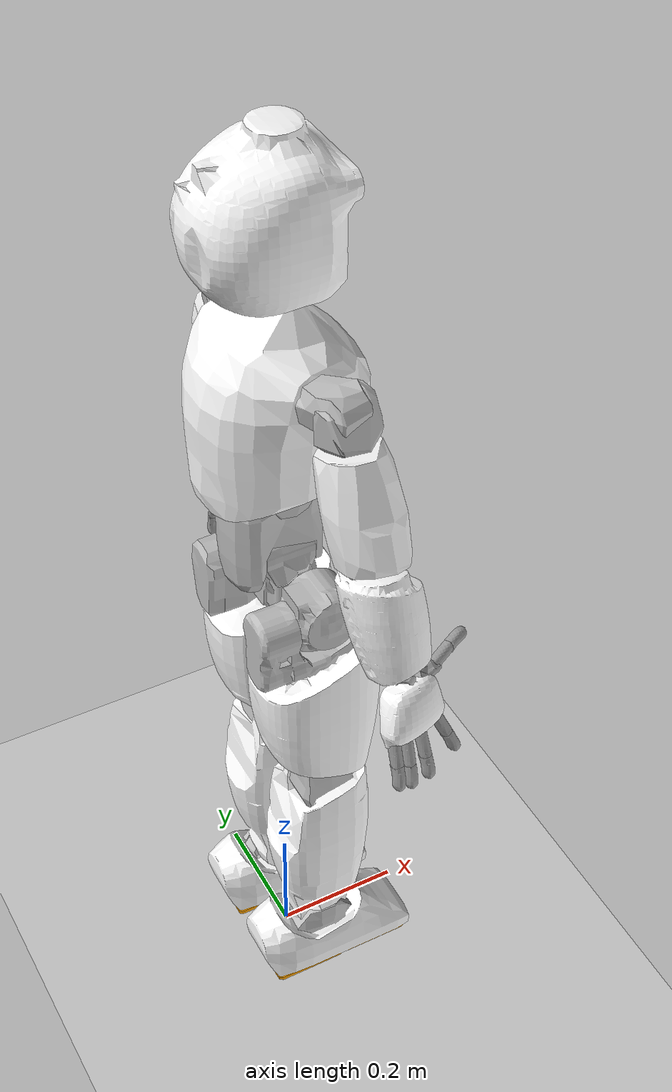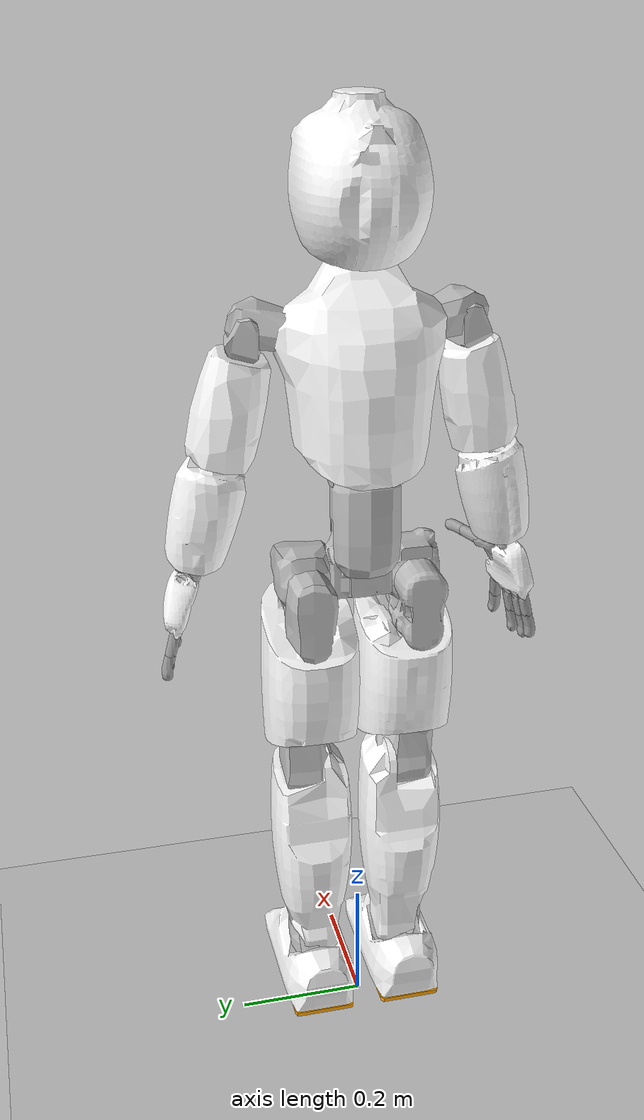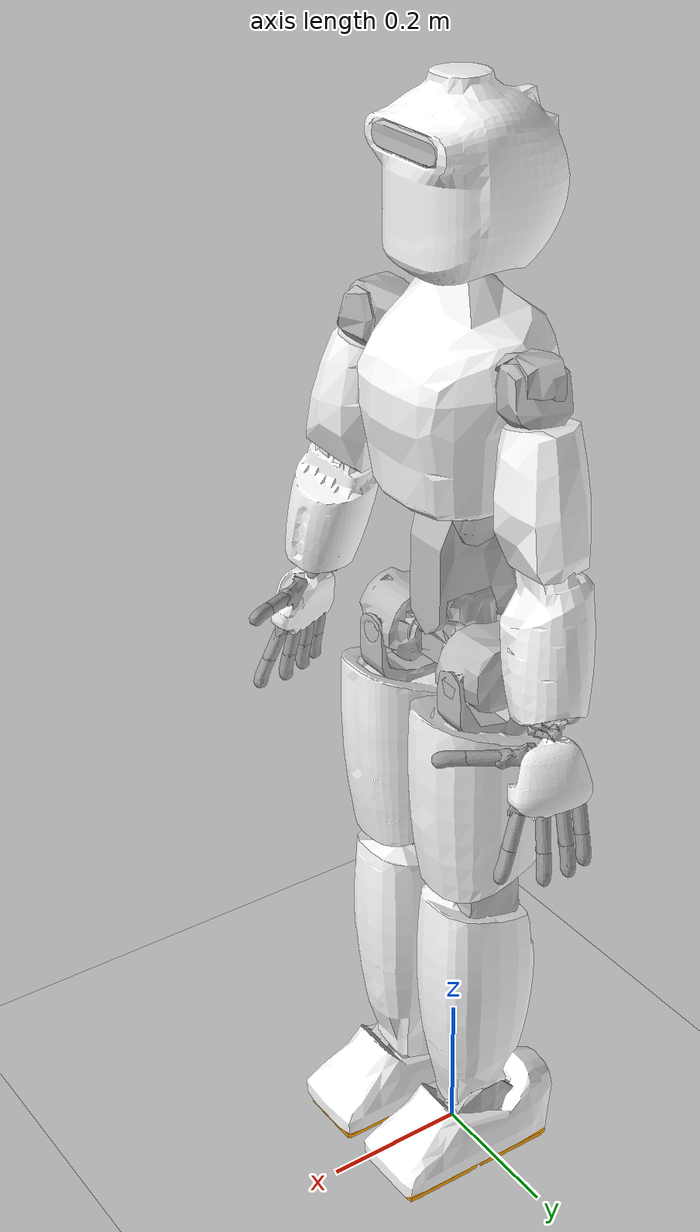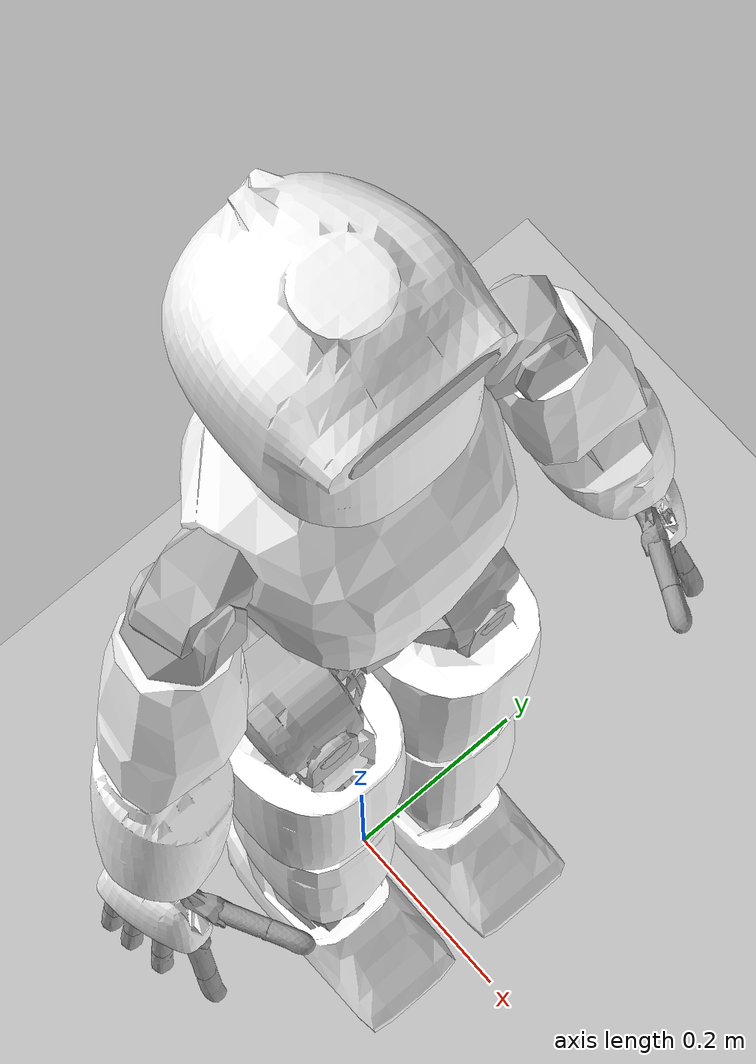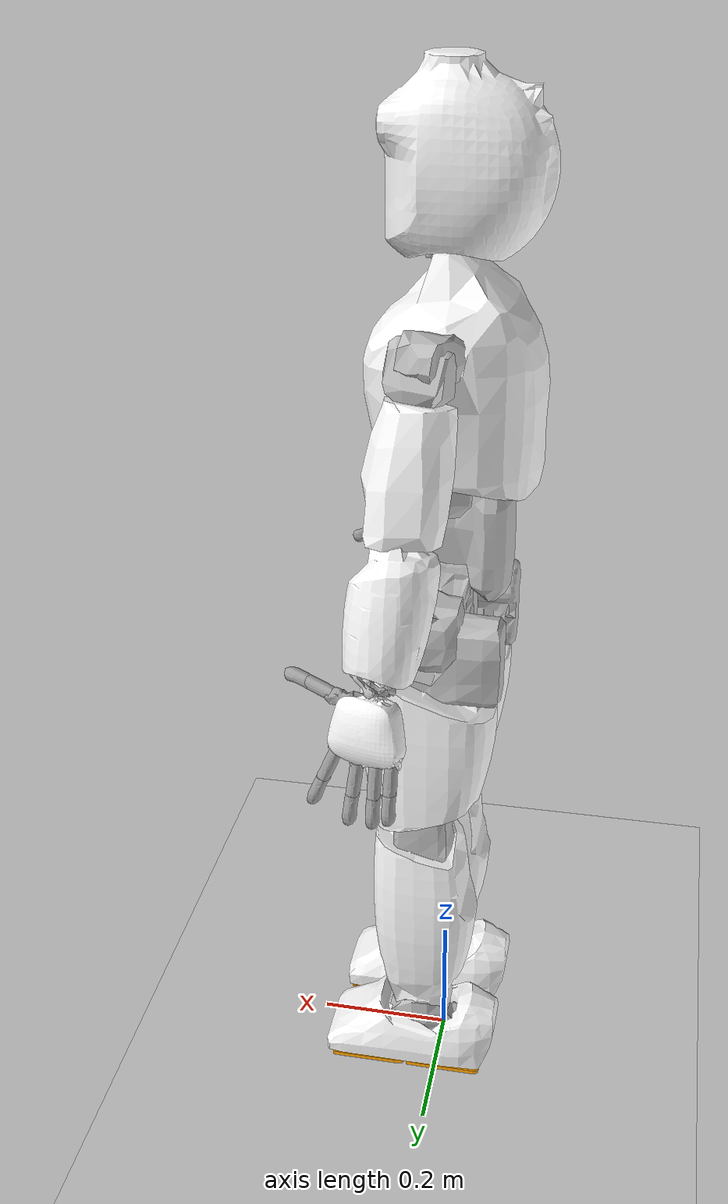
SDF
<?xml version="1.0"?>

<sdf version="1.11">
    <!-- Example world used to try ergocub in Gazebo -->
    <world name="tutorial_controlboard">
        <physics name="1ms" type="ignored">
            <max_step_size>0.001</max_step_size>
            <real_time_factor>1.0</real_time_factor>
            <max_contacts>4</max_contacts>
        </physics>
        <plugin
            filename="gz-sim-physics-system"
            name="gz::sim::systems::Physics">
        </plugin>
        <plugin
            filename="gz-sim-user-commands-system"
            name="gz::sim::systems::UserCommands">
        </plugin>
        <plugin
            filename="gz-sim-sensors-system"
            name="gz::sim::systems::Sensors">
        </plugin>
        <plugin
            filename="gz-sim-scene-broadcaster-system"
            name="gz::sim::systems::SceneBroadcaster">
        </plugin>
        <plugin
            filename="gz-sim-contact-system"
            name="gz::sim::systems::Contact">
        </plugin>

        <!-- YARP CLOCK -->
        <plugin
            filename="gz-sim-yarp-clock-system"
            name="gzyarp::Clock">
        </plugin>

        <light type="directional" name="sun">
            <cast_shadows>true</cast_shadows>
            <pose>0 0 10 0 0 0</pose>
            <diffuse>0.8 0.8 0.8 1</diffuse>
            <specular>0.2 0.2 0.2 1</specular>
            <attenuation>
                <range>1000</range>
                <constant>0.9</constant>
                <linear>0.01</linear>
                <quadratic>0.001</quadratic>
            </attenuation>
            <direction>-0.5 0.1 -0.9</direction>
        </light>

        <model name="ground_plane">
            <static>true</static>
            <link name="link">
                <collision name="collision">
                    <geometry>
                        <plane>
                            <normal>0 0 1</normal>
                            <size>100 100</size>
                        </plane>
                    </geometry>
                </collision>
                <visual name="visual">
                    <geometry>
                        <plane>
                            <normal>0 0 1</normal>
                            <size>100 100</size>
                        </plane>
                    </geometry>
                    <material>
                        <ambient>0.8 0.8 0.8 1</ambient>
                        <diffuse>0.8 0.8 0.8 1</diffuse>
                        <specular>0.8 0.8 0.8 1</specular>
                    </material>
                </visual>
            </link>
        </model>

        <include>
            <uri>model://ergoCub/robots/ergoCubGazeboV1_1_fixed</uri>
        </include>

    </world>
</sdf>

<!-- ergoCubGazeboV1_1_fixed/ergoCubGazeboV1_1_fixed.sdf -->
<sdf version='1.7'>
  <model name="ergocub_fixed">
    <include>
      <uri>model://ergoCub/robots/ergoCubGazeboV1_1</uri>
    </include>

  </model>
</sdf>
